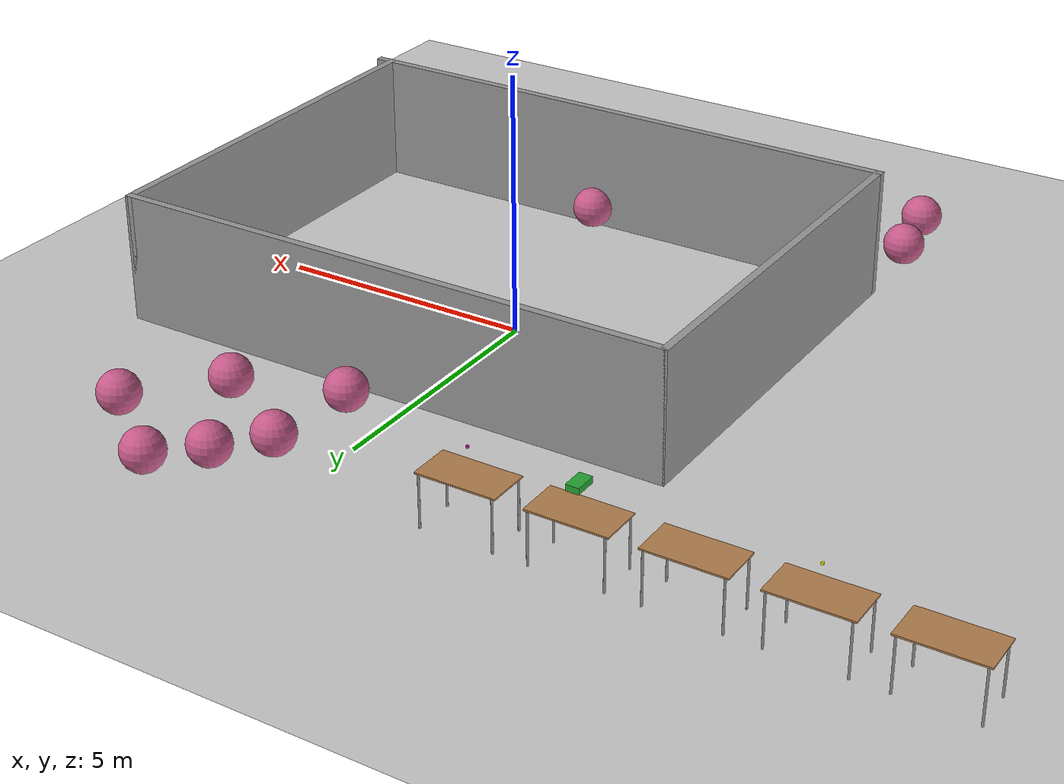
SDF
<sdf version="1.6">
 <world name="default">
  <include><uri>model://sun</uri></include>
  <include><uri>model://ground_plane</uri></include>
  <include><uri>model://world1</uri><static>true</static></include>
  <model name="Table1">
   <include><uri>model://table</uri><pose>-11 6 0 0 0 0</pose><static>true</static></include>
  </model>
  <model name="Table2">
   <include><uri>model://table</uri><pose>-9 6 0 0 0 0</pose><static>true</static></include>
  </model>
  <model name="Table3">
   <include><uri>model://table</uri><pose>-7 6 0 0 0 0</pose><static>true</static></include>
  </model>
  <model name="Table4">
   <include><uri>model://table</uri><pose>-5 6 0 0 0 0</pose><static>true</static></include>
  </model>
  <model name="Table5">
   <include><uri>model://table</uri><pose>-3 6 0 0 0 0</pose><static>true</static></include>
  </model>
  <include><uri>model://box_yellow</uri><pose>-9 6 1.5 0 0 0</pose><static>false</static></include>
  <include><uri>model://box_green</uri><pose>-5 6 1.5 0 0 0</pose><static>false</static></include>
  <include><uri>model://box_purple</uri><pose>-3 6 1.5 0 0 0</pose><static>false</static></include>
  <model name="Ball1">
   <include><uri>model://ball_pink</uri><pose>1.16 -4.72 0.4 0 0 0</pose><static>true</static></include>
  </model>
  <model name="Ball2">
   <include><uri>model://ball_pink</uri><pose>1.02 -5.73 0.4 0 0 0</pose><static>true</static></include>
  </model>
  <model name="Ball3">
   <include><uri>model://ball_pink</uri><pose>-4.89 -6.45 0.4 0 0 0</pose><static>true</static></include>
  </model>
  <model name="Ball4">
   <include><uri>model://ball_pink</uri><pose>-4.66 -7.86 0.4 0 0 0</pose><static>true</static></include>
  </model>
  <model name="Ball5">
   <include><uri>model://ball_pink</uri><pose>0.89 3.98 0.4 0 0 0</pose><static>true</static></include>
  </model>
  <model name="Ball6">
   <include><uri>model://ball_pink</uri><pose>1.02 5.8 0.4 0 0 0</pose><static>true</static></include>
  </model>
  <model name="Ball7">
   <include><uri>model://ball_pink</uri><pose>1.7 6.63 0.4 0 0 0</pose><static>true</static></include>
  </model>
  <model name="Ball8">
   <include><uri>model://ball_pink</uri><pose>2.5 7.35 0.4 0 0 0</pose><static>true</static></include>
  </model>
  <model name="Ball9">
   <include><uri>model://ball_pink</uri><pose>4.14 6.1 0.4 0 0 0</pose><static>true</static></include>
  </model>
  <model name="Ball10">
   <include><uri>model://ball_pink</uri><pose>2.89 4.63 0.4 0 0 0</pose><static>true</static></include>
  </model>
 </world>
</sdf>

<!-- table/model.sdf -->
<sdf version="1.5">
  <model name="table">
    <static>true</static>
    <link name="link">
      <collision name="surface">
        <pose>0 0 1.0 0 0 0</pose>
        <geometry>
          <box>
            <size>1.5 0.8 0.03</size>
          </box>
        </geometry>
        <surface>
          <friction>
            <ode>
              <mu>0.6</mu>
              <mu2>0.6</mu2>
            </ode>
          </friction>
        </surface>
      </collision>
      <visual name="visual1">
        <pose>0 0 1.0 0 0 0</pose>
        <geometry>
          <box>
            <size>1.5 0.8 0.03</size>
          </box>
        </geometry>
        <material>
          <script>
            <uri>model://media/materials/scripts/gazebo.material</uri>
            <name>Gazebo/Wood</name>
          </script>
        </material>
      </visual>
      <collision name="front_left_leg">
        <pose>0.68 0.38 0.5 0 0 0</pose>
        <geometry>
          <cylinder>
            <radius>0.02</radius>
            <length>1.0</length>
          </cylinder>
        </geometry>
      </collision>
      <visual name="front_left_leg">
        <pose>0.68 0.38 0.5 0 0 0</pose>
        <geometry>
          <cylinder>
            <radius>0.02</radius>
            <length>1.0</length>
          </cylinder>
        </geometry>
        <material>
          <script>
            <uri>model://media/materials/scripts/gazebo.material</uri>
            <name>Gazebo/Grey</name>
          </script>
        </material>
      </visual>
      <collision name="front_right_leg">
        <pose>0.68 -0.38 0.5 0 0 0</pose>
        <geometry>
          <cylinder>
            <radius>0.02</radius>
            <length>1.0</length>
          </cylinder>
        </geometry>
      </collision>
      <visual name="front_right_leg">
        <pose>0.68 -0.38 0.5 0 0 0</pose>
        <geometry>
          <cylinder>
            <radius>0.02</radius>
            <length>1.0</length>
          </cylinder>
        </geometry>
        <material>
          <script>
            <uri>model://media/materials/scripts/gazebo.material</uri>
            <name>Gazebo/Grey</name>
          </script>
        </material>
      </visual>
      <collision name="back_right_leg">
        <pose>-0.68 -0.38 0.5 0 0 0</pose>
        <geometry>
          <cylinder>
            <radius>0.02</radius>
            <length>1.0</length>
          </cylinder>
        </geometry>
      </collision>
      <visual name="back_right_leg">
        <pose>-0.68 -0.38 0.5 0 0 0</pose>
        <geometry>
          <cylinder>
            <radius>0.02</radius>
            <length>1.0</length>
          </cylinder>
        </geometry>
        <material>
          <script>
            <uri>model://media/materials/scripts/gazebo.material</uri>
            <name>Gazebo/Grey</name>
          </script>
        </material>
      </visual>
      <collision name="back_left_leg">
        <pose>-0.68 0.38 0.5 0 0 0</pose>
        <geometry>
          <cylinder>
            <radius>0.02</radius>
            <length>1.0</length>
          </cylinder>
        </geometry>
      </collision>
      <visual name="back_left_leg">
        <pose>-0.68 0.38 0.5 0 0 0</pose>
        <geometry>
          <cylinder>
            <radius>0.02</radius>
            <length>1.0</length>
          </cylinder>
        </geometry>
        <material>
          <script>
            <uri>model://media/materials/scripts/gazebo.material</uri>
            <name>Gazebo/Grey</name>
          </script>
        </material>
      </visual>
    </link>
  </model>
</sdf>

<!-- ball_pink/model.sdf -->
<sdf version='1.6'>
  <model name='ball_pink'>
    <link name='link_0'>
      <inertial>
        <mass>1</mass>
        <inertia>
          <ixx>0.1</ixx>
          <ixy>0</ixy>
          <ixz>0</ixz>
          <iyy>0.1</iyy>
          <iyz>0</iyz>
          <izz>0.1</izz>
        </inertia>
        <pose frame=''>0 0 0 0 -0 0</pose>
      </inertial>
      <pose frame=''>-0 -0 0 0 -0 0</pose>
      <gravity>1</gravity>
      <self_collide>0</self_collide>
      <kinematic>0</kinematic>
      <enable_wind>0</enable_wind>
      <visual name='visual'>
        <pose frame=''>0 0 0 0 -0 0</pose>
        <geometry>
          <sphere>
            <radius>0.4</radius>
          </sphere>
        </geometry>
        <material>
          <lighting>1</lighting>
          <script>
            <uri>file://media/materials/scripts/gazebo.material</uri>
            <name>Gazebo/Grey</name>
          </script>
          <shader type='pixel'>
            <normal_map>__default__</normal_map>
          </shader>
          <ambient>0.745 0.314 0.502 1</ambient>
          <diffuse>0.79 0.36 0.55 1</diffuse>
          <specular>0.01 0.01 0.01 1</specular>
          <emissive>0 0 0 1</emissive>
        </material>
        <transparency>0</transparency>
        <cast_shadows>1</cast_shadows>
      </visual>
      <collision name='collision'>
        <laser_retro>0</laser_retro>
        <max_contacts>10</max_contacts>
        <pose frame=''>0 0 0 0 -0 0</pose>
        <geometry>
          <sphere>
            <radius>0.4</radius>
          </sphere>
        </geometry>
        <surface>
          <friction>
            <ode>
              <mu>1</mu>
              <mu2>1</mu2>
              <fdir1>0 0 0</fdir1>
              <slip1>0</slip1>
              <slip2>0</slip2>
            </ode>
            <torsional>
              <coefficient>1</coefficient>
              <patch_radius>0</patch_radius>
              <surface_radius>0</surface_radius>
              <use_patch_radius>1</use_patch_radius>
              <ode>
                <slip>0</slip>
              </ode>
            </torsional>
          </friction>
          <bounce>
            <restitution_coefficient>0</restitution_coefficient>
            <threshold>1e+06</threshold>
          </bounce>
          <contact>
            <collide_without_contact>0</collide_without_contact>
            <collide_without_contact_bitmask>1</collide_without_contact_bitmask>
            <collide_bitmask>1</collide_bitmask>
            <ode>
              <soft_cfm>0</soft_cfm>
              <soft_erp>0.2</soft_erp>
              <kp>1e+13</kp>
              <kd>1</kd>
              <max_vel>0.01</max_vel>
              <min_depth>0</min_depth>
            </ode>
            <bullet>
              <split_impulse>1</split_impulse>
              <split_impulse_penetration_threshold>-0.01</split_impulse_penetration_threshold>
              <soft_cfm>0</soft_cfm>
              <soft_erp>0.2</soft_erp>
              <kp>1e+13</kp>
              <kd>1</kd>
            </bullet>
          </contact>
        </surface>
      </collision>
    </link>
    <static>0</static>
    <allow_auto_disable>1</allow_auto_disable>
  </model>
</sdf>

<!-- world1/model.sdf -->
<sdf version='1.6'>
  <model name='world1'>
    <pose frame=''>0.775361 -0.83674 0 0 -0 0</pose>
    <link name='Wall_10'>
      <collision name='Wall_10_Collision'>
        <geometry>
          <box>
            <size>11.5 0.15 2.5</size>
          </box>
        </geometry>
        <pose frame=''>0 0 1.25 0 -0 0</pose>
      </collision>
      <visual name='Wall_10_Visual'>
        <pose frame=''>0 0 1.25 0 -0 0</pose>
        <geometry>
          <box>
            <size>11.5 0.15 2.5</size>
          </box>
        </geometry>
        <material>
          <script>
            <uri>file://media/materials/scripts/gazebo.material</uri>
            <name>Gazebo/Grey</name>
          </script>
          <ambient>1 1 1 1</ambient>
        </material>
        <meta>
          <layer>0</layer>
        </meta>
      </visual>
      <pose frame=''>0 -4.05 0 0 -0 0</pose>
    </link>
    <link name='Wall_12'>
      <collision name='Wall_12_Collision'>
        <geometry>
          <box>
            <size>8.25 0.15 2.5</size>
          </box>
        </geometry>
        <pose frame=''>0 0 1.25 0 -0 0</pose>
      </collision>
      <visual name='Wall_12_Visual'>
        <pose frame=''>0 0 1.25 0 -0 0</pose>
        <geometry>
          <box>
            <size>8.25 0.15 2.5</size>
          </box>
        </geometry>
        <material>
          <script>
            <uri>file://media/materials/scripts/gazebo.material</uri>
            <name>Gazebo/Grey</name>
          </script>
          <ambient>1 1 1 1</ambient>
        </material>
        <meta>
          <layer>0</layer>
        </meta>
      </visual>
      <pose frame=''>-5.675 -0 0 0 -0 1.5708</pose>
    </link>
    <link name='Wall_13'>
      <collision name='Wall_13_Collision'>
        <geometry>
          <box>
            <size>11.25 0.15 2.5</size>
          </box>
        </geometry>
        <pose frame=''>0 0 1.25 0 -0 0</pose>
      </collision>
      <visual name='Wall_13_Visual'>
        <pose frame=''>0 0 1.25 0 -0 0</pose>
        <geometry>
          <box>
            <size>11.25 0.15 2.5</size>
          </box>
        </geometry>
        <material>
          <script>
            <uri>file://media/materials/scripts/gazebo.material</uri>
            <name>Gazebo/Grey</name>
          </script>
          <ambient>1 1 1 1</ambient>
        </material>
        <meta>
          <layer>0</layer>
        </meta>
      </visual>
      <pose frame=''>-0.125 4.05 0 0 -0 0</pose>
    </link>
    <link name='Wall_14'>
      <collision name='Wall_14_Collision'>
        <geometry>
          <box>
            <size>8.25 0.15 2.5</size>
          </box>
        </geometry>
        <pose frame=''>0 0 1.25 0 -0 0</pose>
      </collision>
      <visual name='Wall_14_Visual'>
        <pose frame=''>0 0 1.25 0 -0 0</pose>
        <geometry>
          <box>
            <size>8.25 0.15 2.5</size>
          </box>
        </geometry>
        <material>
          <script>
            <uri>file://media/materials/scripts/gazebo.material</uri>
            <name>Gazebo/Grey</name>
          </script>
          <ambient>1 1 1 1</ambient>
        </material>
        <meta>
          <layer>0</layer>
        </meta>
      </visual>
      <pose frame=''>5.425 -0 0 0 -0 -1.5708</pose>
    </link>
    <static>1</static>
  </model>
</sdf>

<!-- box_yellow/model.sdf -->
<sdf version="1.5">
  <model name="boxyellow">
    <link name="base_link">
      <pose>0 0 0 0 0 0</pose>
      <inertial>
        <mass>0.010</mass>
        <inertia>
          <ixx>1e-5</ixx>
          <ixy>0</ixy>
          <ixz>0</ixz>
          <iyy>1e-5</iyy>
          <iyz>0</iyz>
          <izz>1e-5</izz>
        </inertia>
      </inertial>
      <collision name="collision">
        <geometry>
          <box>
            <size>0.04 0.04 0.04</size>
          </box>
        </geometry>
        <surface>
          <friction>
            <ode>
              <mu>50.0</mu>
              <mu2>50.0</mu2>
            </ode>
          </friction>
          <contact>
          	<ode>
          		<min_depth>0.001</min_depth>
          		<max_vel>0.0</max_vel>
          	</ode>
          </contact>
        </surface>
      </collision>
      <visual name="visual">
        <geometry>
          <box>
            <size>0.04 0.04 0.04</size>
          </box>
        </geometry>
        <material>
          <ambient>1.0 1.0 0.0 1</ambient>
          <diffuse>1.0 1.0 0.0 1</diffuse>
          <specular>0 0 0 0</specular>
          <emissive>0 0 0 1</emissive>
        </material>
      </visual>
    </link>
  </model>
</sdf>

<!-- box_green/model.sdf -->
<sdf version='1.7'>
  <model name='box_green'>
    <link name='link'>
      <inertial>
        <mass>3.5</mass>
        <inertia>
          <ixx>0.0527224</ixx>
          <ixy>0</ixy>
          <ixz>0</ixz>
          <iyy>0.0208089</iyy>
          <iyz>0</iyz>
          <izz>0.0659078</izz>
        </inertia>
        <pose>0 0 0 0 -0 0</pose>
      </inertial>
      <self_collide>0</self_collide>
      <enable_wind>0</enable_wind>
      <kinematic>0</kinematic>
      <pose>0 0 0 0 -0 0</pose>
      <gravity>1</gravity>
      <visual name='visual'>
        <geometry>
          <box>
            <size>0.241404 0.409504 0.114319</size>
          </box>
        </geometry>
        <material>
          <script>
            <name>Gazebo/Green</name>
            <uri>file://media/materials/scripts/gazebo.material</uri>
          </script>
          <shader type='pixel'>
            <normal_map>__default__</normal_map>
          </shader>
          <ambient>0.3 0.3 0.3 1</ambient>
          <diffuse>0.1 1 0.1 1</diffuse>
          <specular>0.01 0.01 0.01 1</specular>
          <emissive>0 0 0 1</emissive>
        </material>
        <pose>0 0 0 0 -0 0</pose>
        <transparency>0</transparency>
        <cast_shadows>1</cast_shadows>
      </visual>
      <collision name='collision'>
        <laser_retro>0</laser_retro>
        <max_contacts>20</max_contacts>
        <pose>0 0 0 0 -0 0</pose>
        <geometry>
          <box>
            <size>0.241404 0.409504 0.114319</size>
          </box>
        </geometry>
        <surface>
          <friction>
            <ode>
              <mu>0.6</mu>
              <mu2>0.6</mu2>
              <fdir1>0.707 0.707 0</fdir1>
              <slip1>0</slip1>
              <slip2>0</slip2>
            </ode>
            <torsional>
              <coefficient>0.6</coefficient>
              <patch_radius>0.5</patch_radius>
              <surface_radius>0.5</surface_radius>
              <use_patch_radius>0</use_patch_radius>
              <ode>
                <slip>0</slip>
              </ode>
            </torsional>
          </friction>
          <bounce>
            <restitution_coefficient>0.002</restitution_coefficient>
            <threshold>1e+06</threshold>
          </bounce>
          <contact>
            <collide_without_contact>0</collide_without_contact>
            <collide_without_contact_bitmask>1</collide_without_contact_bitmask>
            <collide_bitmask>1</collide_bitmask>
            <ode>
              <soft_cfm>0</soft_cfm>
              <soft_erp>0.2</soft_erp>
              <kp>1e+15</kp>
              <kd>1e+13</kd>
              <max_vel>0.01</max_vel>
              <min_depth>0</min_depth>
            </ode>
            <bullet>
              <split_impulse>1</split_impulse>
              <split_impulse_penetration_threshold>-0.01</split_impulse_penetration_threshold>
              <soft_cfm>0</soft_cfm>
              <soft_erp>0.2</soft_erp>
              <kp>1e+15</kp>
              <kd>1e+13</kd>
            </bullet>
          </contact>
        </surface>
      </collision>
    </link>
    <static>0</static>
    <allow_auto_disable>1</allow_auto_disable>
  </model>
</sdf>

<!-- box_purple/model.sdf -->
<sdf version="1.5">
  <model name="boxpurple">
    <link name="purple link">
      <pose>0 0 0.01 0 0 0</pose>
      <inertial>
        <mass>0.010</mass>
        <inertia>
          <ixx>1e-5</ixx>
          <ixy>0</ixy>
          <ixz>0</ixz>
          <iyy>1e-5</iyy>
          <iyz>0</iyz>
          <izz>1e-5</izz>
        </inertia>
      </inertial>
      <collision name="collision">
        <geometry>
          <box>
            <size>0.04 0.04 0.04</size>
          </box>
        </geometry>
        <surface>
          <friction>
            <ode>
              <mu>50.0</mu>
              <mu2>50.0</mu2>
            </ode>
          </friction>
          <contact>
          	<ode>
          		<min_depth>0.001</min_depth>
          		<max_vel>0.0</max_vel>
          	</ode>
          </contact>
        </surface>
      </collision>
      <visual name="visual">
        <geometry>
          <box>
            <size>0.04 0.04 0.04</size>
          </box>
        </geometry>
        <material> <!-- Wheel material -->
          <ambient>0.8 0.1 0.8 1</ambient>
          <diffuse>0.8 0.1 0.8 1</diffuse>
          <specular>0 0 0 0</specular>
          <emissive>0 0 0 1</emissive>
        </material> <!-- End wheel material -->
      </visual>
    </link>
  </model>
</sdf>
